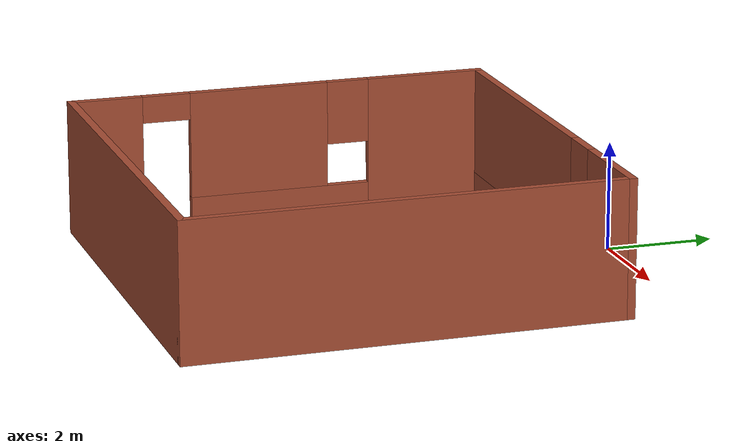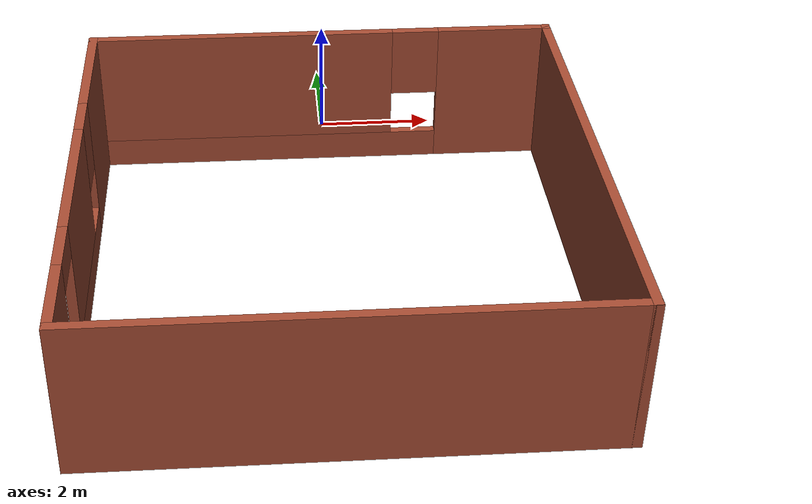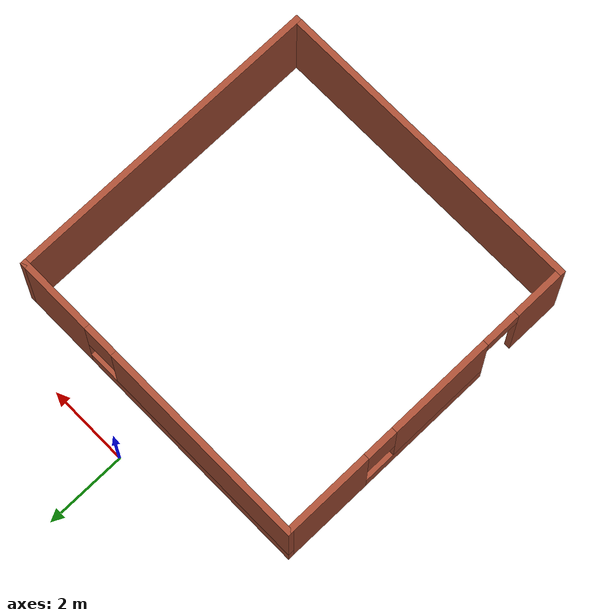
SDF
<?xml version='1.0'?>
<sdf version='1.7'>
  <model name='room'>
    <pose>-0.065 -4.5275 0 0 -0 0</pose>
    <link name='Wall_0'>
      <pose>-3.925 -0.5275 0 0 -0 -1.5708</pose>
      <visual name='Wall_0_Visual_0'>
        <pose>-2.86378 0 1.25 0 -0 0</pose>
        <geometry>
          <box>
            <size>2.27245 0.15 2.5</size>
          </box>
        </geometry>
        <material>
          <script>
            <uri>file://media/materials/scripts/gazebo.material</uri>
            <name>Gazebo/Bricks</name>
          </script>
          <ambient>1 1 1 1</ambient>
        </material>
        <meta>
          <layer>0</layer>
        </meta>
      </visual>
      <collision name='Wall_0_Collision_0'>
        <geometry>
          <box>
            <size>2.27245 0.15 2.5</size>
          </box>
        </geometry>
        <pose>-2.86378 0 1.25 0 -0 0</pose>
      </collision>
      <visual name='Wall_0_Visual_1'>
        <pose>3.30758 0 1.25 0 -0 0</pose>
        <geometry>
          <box>
            <size>1.38483 0.15 2.5</size>
          </box>
        </geometry>
        <material>
          <script>
            <uri>file://media/materials/scripts/gazebo.material</uri>
            <name>Gazebo/Bricks</name>
          </script>
          <ambient>1 1 1 1</ambient>
        </material>
        <meta>
          <layer>0</layer>
        </meta>
      </visual>
      <collision name='Wall_0_Collision_1'>
        <geometry>
          <box>
            <size>1.38483 0.15 2.5</size>
          </box>
        </geometry>
        <pose>3.30758 0 1.25 0 -0 0</pose>
      </collision>
      <visual name='Wall_0_Visual_2'>
        <pose>-0.006191 0 0.25 0 -0 0</pose>
        <geometry>
          <box>
            <size>3.44272 0.15 0.5</size>
          </box>
        </geometry>
        <material>
          <script>
            <uri>file://media/materials/scripts/gazebo.material</uri>
            <name>Gazebo/Bricks</name>
          </script>
          <ambient>1 1 1 1</ambient>
        </material>
        <meta>
          <layer>0</layer>
        </meta>
      </visual>
      <collision name='Wall_0_Collision_2'>
        <geometry>
          <box>
            <size>3.44272 0.15 0.5</size>
          </box>
        </geometry>
        <pose>-0.006191 0 0.25 0 -0 0</pose>
      </collision>
      <visual name='Wall_0_Visual_3'>
        <pose>0.393809 0 1.5 0 -0 0</pose>
        <geometry>
          <box>
            <size>2.64272 0.15 2</size>
          </box>
        </geometry>
        <material>
          <script>
            <uri>file://media/materials/scripts/gazebo.material</uri>
            <name>Gazebo/Bricks</name>
          </script>
          <ambient>1 1 1 1</ambient>
        </material>
        <meta>
          <layer>0</layer>
        </meta>
      </visual>
      <collision name='Wall_0_Collision_3'>
        <geometry>
          <box>
            <size>2.64272 0.15 2</size>
          </box>
        </geometry>
        <pose>0.393809 0 1.5 0 -0 0</pose>
      </collision>
      <visual name='Wall_0_Visual_4'>
        <pose>-1.32755 0 1.9 0 -0 0</pose>
        <geometry>
          <box>
            <size>0.8 0.15 1.2</size>
          </box>
        </geometry>
        <material>
          <script>
            <uri>file://media/materials/scripts/gazebo.material</uri>
            <name>Gazebo/Bricks</name>
          </script>
          <ambient>1 1 1 1</ambient>
        </material>
        <meta>
          <layer>0</layer>
        </meta>
      </visual>
      <collision name='Wall_0_Collision_4'>
        <geometry>
          <box>
            <size>0.8 0.15 1.2</size>
          </box>
        </geometry>
        <pose>-1.32755 0 1.9 0 -0 0</pose>
      </collision>
      <visual name='Wall_0_Visual_5'>
        <pose>2.16517 0 2.25 0 -0 0</pose>
        <geometry>
          <box>
            <size>0.9 0.15 0.5</size>
          </box>
        </geometry>
        <material>
          <script>
            <uri>file://media/materials/scripts/gazebo.material</uri>
            <name>Gazebo/Bricks</name>
          </script>
          <ambient>1 1 1 1</ambient>
        </material>
        <meta>
          <layer>0</layer>
        </meta>
      </visual>
      <collision name='Wall_0_Collision_5'>
        <geometry>
          <box>
            <size>0.9 0.15 0.5</size>
          </box>
        </geometry>
        <pose>2.16517 0 2.25 0 -0 0</pose>
      </collision>
    </link>
    <link name='Wall_1'>
      <collision name='Wall_1_Collision'>
        <geometry>
          <box>
            <size>8 0.15 2.5</size>
          </box>
        </geometry>
        <pose>0 0 1.25 0 -0 0</pose>
      </collision>
      <visual name='Wall_1_Visual'>
        <pose>0 0 1.25 0 -0 0</pose>
        <geometry>
          <box>
            <size>8 0.15 2.5</size>
          </box>
        </geometry>
        <material>
          <script>
            <uri>file://media/materials/scripts/gazebo.material</uri>
            <name>Gazebo/Bricks</name>
          </script>
          <ambient>1 1 1 1</ambient>
        </material>
        <meta>
          <layer>0</layer>
        </meta>
      </visual>
      <pose>0 -4.4525 0 0 -0 0</pose>
    </link>
    <link name='Wall_2'>
      <collision name='Wall_2_Collision'>
        <geometry>
          <box>
            <size>8 0.15 2.5</size>
          </box>
        </geometry>
        <pose>0 0 1.25 0 -0 0</pose>
      </collision>
      <visual name='Wall_2_Visual'>
        <pose>0 0 1.25 0 -0 0</pose>
        <geometry>
          <box>
            <size>8 0.15 2.5</size>
          </box>
        </geometry>
        <material>
          <script>
            <uri>file://media/materials/scripts/gazebo.material</uri>
            <name>Gazebo/Bricks</name>
          </script>
          <ambient>1 1 1 1</ambient>
        </material>
        <meta>
          <layer>0</layer>
        </meta>
      </visual>
      <pose>3.925 -0.5275 0 0 -0 1.5708</pose>
    </link>
    <link name='Wall_3'>
      <pose>0 3.3975 0 0 -0 3.14159</pose>
      <visual name='Wall_3_Visual_0'>
        <pose>-3.01824 0 1.25 0 -0 0</pose>
        <geometry>
          <box>
            <size>1.96352 0.15 2.5</size>
          </box>
        </geometry>
        <material>
          <script>
            <uri>file://media/materials/scripts/gazebo.material</uri>
            <name>Gazebo/Bricks</name>
          </script>
          <ambient>1 1 1 1</ambient>
        </material>
        <meta>
          <layer>0</layer>
        </meta>
      </visual>
      <collision name='Wall_3_Collision_0'>
        <geometry>
          <box>
            <size>1.96352 0.15 2.5</size>
          </box>
        </geometry>
        <pose>-3.01824 0 1.25 0 -0 0</pose>
      </collision>
      <visual name='Wall_3_Visual_1'>
        <pose>0.981762 0 0.25 0 -0 0</pose>
        <geometry>
          <box>
            <size>6.03648 0.15 0.5</size>
          </box>
        </geometry>
        <material>
          <script>
            <uri>file://media/materials/scripts/gazebo.material</uri>
            <name>Gazebo/Bricks</name>
          </script>
          <ambient>1 1 1 1</ambient>
        </material>
        <meta>
          <layer>0</layer>
        </meta>
      </visual>
      <collision name='Wall_3_Collision_1'>
        <geometry>
          <box>
            <size>6.03648 0.15 0.5</size>
          </box>
        </geometry>
        <pose>0.981762 0 0.25 0 -0 0</pose>
      </collision>
      <visual name='Wall_3_Visual_2'>
        <pose>1.38176 0 1.5 0 -0 0</pose>
        <geometry>
          <box>
            <size>5.23648 0.15 2</size>
          </box>
        </geometry>
        <material>
          <script>
            <uri>file://media/materials/scripts/gazebo.material</uri>
            <name>Gazebo/Bricks</name>
          </script>
          <ambient>1 1 1 1</ambient>
        </material>
        <meta>
          <layer>0</layer>
        </meta>
      </visual>
      <collision name='Wall_3_Collision_2'>
        <geometry>
          <box>
            <size>5.23648 0.15 2</size>
          </box>
        </geometry>
        <pose>1.38176 0 1.5 0 -0 0</pose>
      </collision>
      <visual name='Wall_3_Visual_3'>
        <pose>-1.63647 0 1.9 0 -0 0</pose>
        <geometry>
          <box>
            <size>0.8 0.15 1.2</size>
          </box>
        </geometry>
        <material>
          <script>
            <uri>file://media/materials/scripts/gazebo.material</uri>
            <name>Gazebo/Bricks</name>
          </script>
          <ambient>1 1 1 1</ambient>
        </material>
        <meta>
          <layer>0</layer>
        </meta>
      </visual>
      <collision name='Wall_3_Collision_3'>
        <geometry>
          <box>
            <size>0.8 0.15 1.2</size>
          </box>
        </geometry>
        <pose>-1.63647 0 1.9 0 -0 0</pose>
      </collision>
    </link>
    <static>1</static>
  </model>
</sdf>
